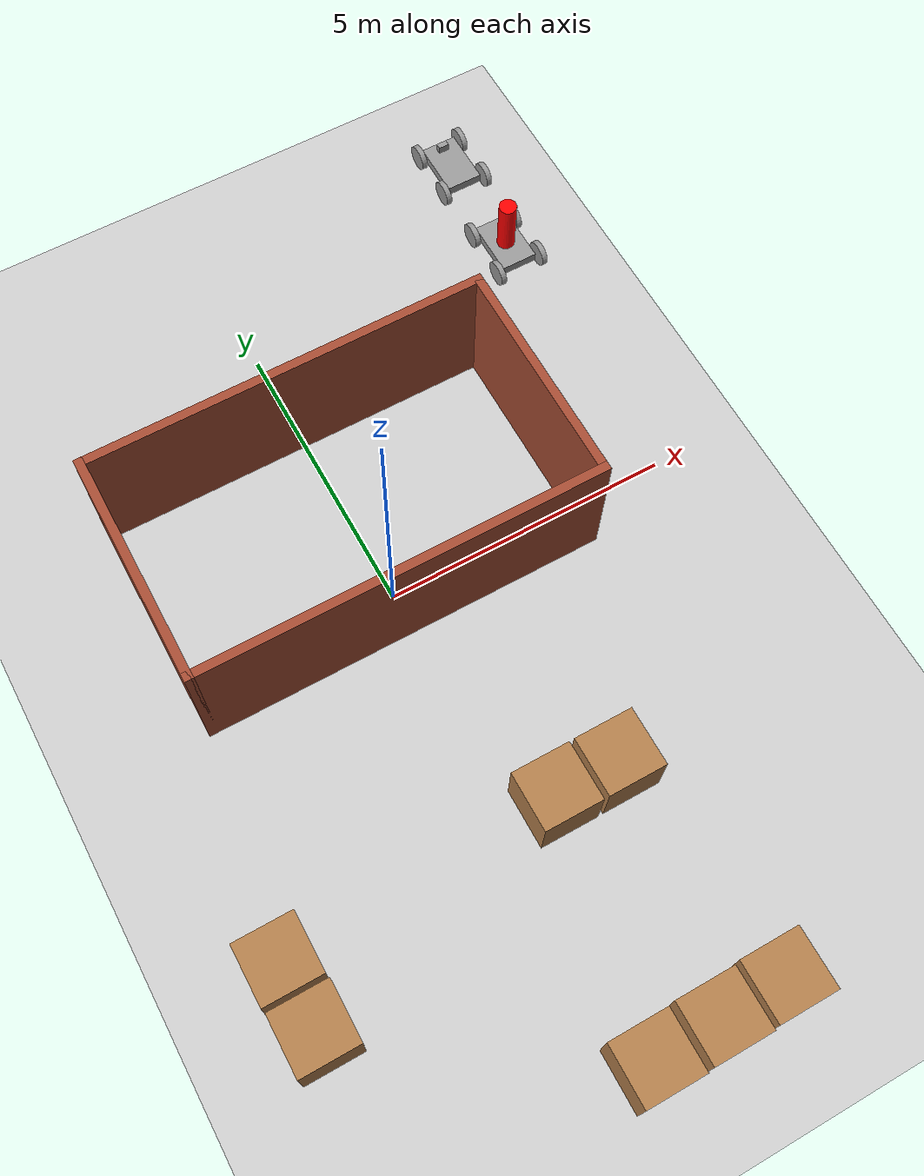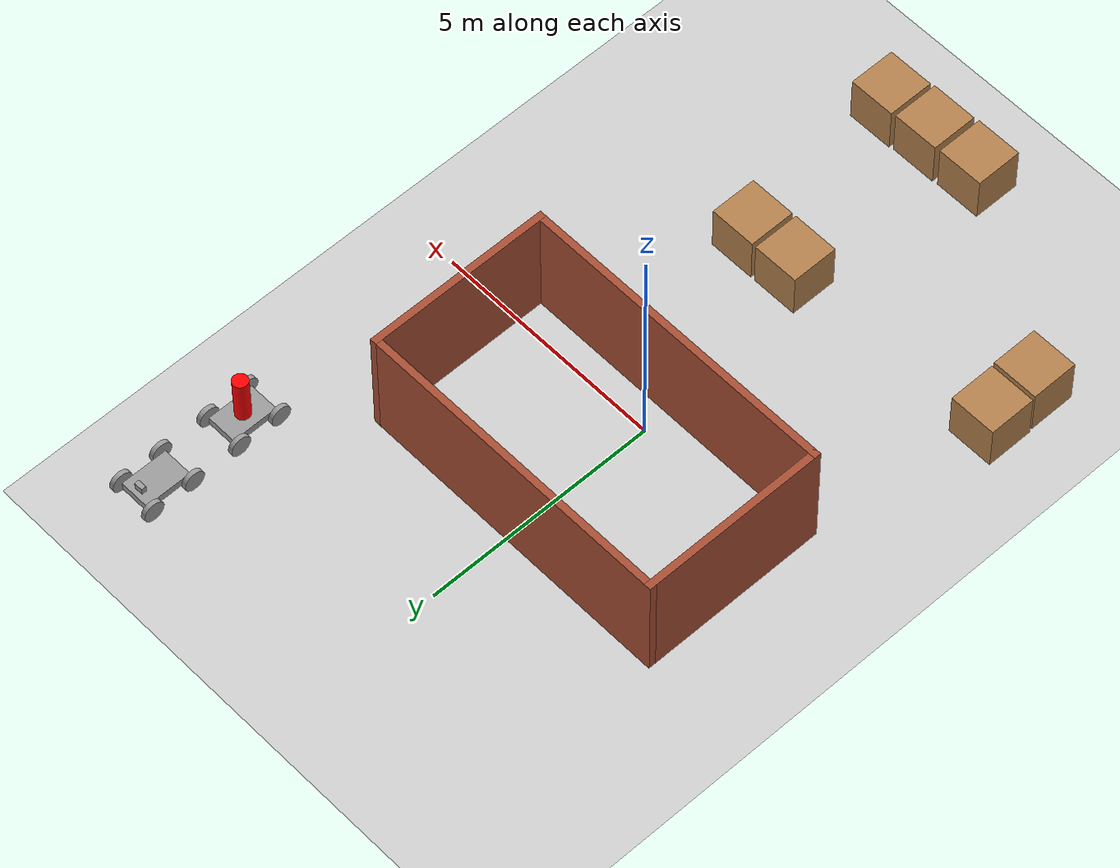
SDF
<sdf version="1.6">
 <world name="default">
  <light name="sun" type="directional">
   <pose>0 0 10 0 -0 0</pose>
   <diffuse>0.8 0.8 0.8 1</diffuse>
   <specular>0.2 0.2 0.2 1</specular>
   <attenuation>
    <range>1000</range>
    <constant>0.9</constant>
    <linear>0.01</linear>
    <quadratic>0.001</quadratic>
   </attenuation>
   <direction>-0.5 0.1 -0.9</direction>
  </light>
  <model name="ground_plane">
   <static>1</static>
   <link name="link">
    <collision name="collision">
     <geometry><plane><normal>0 0 1</normal><size>100 100</size></plane></geometry>
     <surface>
      <contact><collide_bitmask>65535</collide_bitmask></contact>
      <friction><ode><mu>100</mu><mu2>50</mu2></ode></friction>
     </surface>
    </collision>
    <visual name="visual">
     <cast_shadows>0</cast_shadows>
     <geometry><plane><normal>0 0 1</normal><size>100 100</size></plane></geometry>
     <material>
      <script><uri>file://media/materials/scripts/gazebo.material</uri><name>Gazebo/Grey</name></script>
     </material>
    </visual>
   </link>
  </model>
  <gravity>0 0 -9.8</gravity>
  <magnetic_field>6e-06 2.3e-05 -4.2e-05</magnetic_field>
  <atmosphere type="adiabatic"/>
  <physics name="default_physics" default="0" type="ode">
   <max_step_size>0.001</max_step_size>
   <real_time_factor>1</real_time_factor>
   <real_time_update_rate>1000</real_time_update_rate>
  </physics>
  <scene><ambient>0.4 0.4 0.4 1</ambient><background>0.7 0.7 0.7 1</background><shadows>1</shadows></scene>
  <audio><device>default</device></audio>
  <spherical_coordinates>
   <surface_model>EARTH_WGS84</surface_model>
   <latitude_deg>0</latitude_deg>
   <longitude_deg>0</longitude_deg>
   <elevation>0</elevation>
   <heading_deg>0</heading_deg>
  </spherical_coordinates>
  <model name="nemo">
   <link name="link_1">
    <inertial>
     <mass>5</mass>
     <inertia>
      <ixx>0.428684</ixx>
      <ixy>0</ixy>
      <ixz>0</ixz>
      <iyy>0.190336</iyy>
      <iyz>0</iyz>
      <izz>0.594986</izz>
     </inertia>
    </inertial>
    <pose>-0 0.00914 -0.007545 0 -0 0</pose>
    <visual name="visual">
     <geometry><box><size>0.654191 1 0.169826</size></box></geometry>
     <material>
      <lighting>1</lighting>
      <script><uri>file://media/materials/scripts/gazebo.material</uri><name>Gazebo/Grey</name></script>
      <shader type="vertex"><normal_map>__default__</normal_map></shader>
      <ambient>0.3 0.3 0.3 1</ambient>
      <diffuse>0.7 0.7 0.7 1</diffuse>
      <specular>0.01 0.01 0.01 1</specular>
      <emissive>0 0 0 1</emissive>
     </material>
    </visual>
    <collision name="collision">
     <geometry><box><size>0.654191 1 0.169826</size></box></geometry>
     <surface>
      <friction>
       <ode><mu>1</mu><mu2>1</mu2><fdir1>0 0 0</fdir1><slip1>0</slip1><slip2>0</slip2></ode>
       <torsional>
        <coefficient>1</coefficient>
        <patch_radius>0</patch_radius>
        <surface_radius>0</surface_radius>
        <use_patch_radius>1</use_patch_radius>
        <ode><slip>0</slip></ode>
       </torsional>
      </friction>
      <bounce><restitution_coefficient>0</restitution_coefficient><threshold>1e+06</threshold></bounce>
      <contact>
       <collide_without_contact>0</collide_without_contact>
       <collide_without_contact_bitmask>1</collide_without_contact_bitmask>
       <collide_bitmask>1</collide_bitmask>
       <ode>
        <soft_cfm>0</soft_cfm>
        <soft_erp>0.2</soft_erp>
        <kp>1e+13</kp>
        <kd>1</kd>
        <max_vel>0.01</max_vel>
        <min_depth>0</min_depth>
       </ode>
       <bullet>
        <split_impulse>1</split_impulse>
        <split_impulse_penetration_threshold>-0.01</split_impulse_penetration_threshold>
        <soft_cfm>0</soft_cfm>
        <soft_erp>0.2</soft_erp>
        <kp>1e+13</kp>
        <kd>1</kd>
       </bullet>
      </contact>
     </surface>
    </collision>
   </link>
   <link name="link_0">
    <inertial>
     <mass>0.0998699</mass>
     <inertia>
      <ixx>0.00894577</ixx>
      <ixy>0</ixy>
      <ixz>0</ixz>
      <iyy>0.00894577</iyy>
      <iyz>0</iyz>
      <izz>0.00124656</izz>
     </inertia>
    </inertial>
    <pose>-0 -0 0.577368 0 1e-06 -1e-05</pose>
    <visual name="visual">
     <geometry><cylinder><radius>0.157999</radius><length>1</length></cylinder></geometry>
     <material>
      <lighting>1</lighting>
      <script><uri>file://media/materials/scripts/gazebo.material</uri><name>Gazebo/Grey</name></script>
      <shader type="vertex"><normal_map>__default__</normal_map></shader>
      <ambient>1 0 0 1</ambient>
      <diffuse>0.7 0.7 0.7 1</diffuse>
      <specular>0.01 0.01 0.01 1</specular>
      <emissive>0 0 0 1</emissive>
     </material>
    </visual>
    <collision name="collision">
     <geometry><cylinder><radius>0.157999</radius><length>1</length></cylinder></geometry>
     <surface>
      <friction>
       <ode><mu>1</mu><mu2>1</mu2><fdir1>0 0 0</fdir1><slip1>0</slip1><slip2>0</slip2></ode>
       <torsional>
        <coefficient>1</coefficient>
        <patch_radius>0</patch_radius>
        <surface_radius>0</surface_radius>
        <use_patch_radius>1</use_patch_radius>
        <ode><slip>0</slip></ode>
       </torsional>
      </friction>
      <bounce><restitution_coefficient>0</restitution_coefficient><threshold>1e+06</threshold></bounce>
      <contact>
       <collide_without_contact>0</collide_without_contact>
       <collide_without_contact_bitmask>1</collide_without_contact_bitmask>
       <collide_bitmask>1</collide_bitmask>
       <ode>
        <soft_cfm>0</soft_cfm>
        <soft_erp>0.2</soft_erp>
        <kp>1e+13</kp>
        <kd>1</kd>
        <max_vel>0.01</max_vel>
        <min_depth>0</min_depth>
       </ode>
       <bullet>
        <split_impulse>1</split_impulse>
        <split_impulse_penetration_threshold>-0.01</split_impulse_penetration_threshold>
        <soft_cfm>0</soft_cfm>
        <soft_erp>0.2</soft_erp>
        <kp>1e+13</kp>
        <kd>1</kd>
       </bullet>
      </contact>
     </surface>
    </collision>
   </link>
   <link name="link_2">
    <inertial>
     <mass>1</mass>
     <inertia>
      <ixx>0.0131563</ixx>
      <ixy>0</ixy>
      <ixz>0</ixz>
      <iyy>0.0131563</iyy>
      <iyz>0</iyz>
      <izz>0.0247202</izz>
     </inertia>
    </inertial>
    <pose>0.422661 -0.451098 0.001886 -3.14159 -1.57079 -3e-06</pose>
    <visual name="visual">
     <geometry><cylinder><radius>0.222352</radius><length>0.0977479</length></cylinder></geometry>
     <material>
      <lighting>1</lighting>
      <script><uri>file://media/materials/scripts/gazebo.material</uri><name>Gazebo/Grey</name></script>
      <shader type="vertex"><normal_map>__default__</normal_map></shader>
      <ambient>0.3 0.3 0.3 1</ambient>
      <diffuse>0.7 0.7 0.7 1</diffuse>
      <specular>0.01 0.01 0.01 1</specular>
      <emissive>0 0 0 1</emissive>
     </material>
    </visual>
    <collision name="collision">
     <geometry><cylinder><radius>0.222352</radius><length>0.097748</length></cylinder></geometry>
     <surface>
      <friction>
       <ode><mu>1</mu><mu2>1</mu2><fdir1>0 0 0</fdir1><slip1>0</slip1><slip2>0</slip2></ode>
       <torsional>
        <coefficient>1</coefficient>
        <patch_radius>0</patch_radius>
        <surface_radius>0</surface_radius>
        <use_patch_radius>1</use_patch_radius>
        <ode><slip>0</slip></ode>
       </torsional>
      </friction>
      <bounce><restitution_coefficient>0</restitution_coefficient><threshold>1e+06</threshold></bounce>
      <contact>
       <collide_without_contact>0</collide_without_contact>
       <collide_without_contact_bitmask>1</collide_without_contact_bitmask>
       <collide_bitmask>1</collide_bitmask>
       <ode>
        <soft_cfm>0</soft_cfm>
        <soft_erp>0.2</soft_erp>
        <kp>1e+13</kp>
        <kd>1</kd>
        <max_vel>0.01</max_vel>
        <min_depth>0</min_depth>
       </ode>
       <bullet>
        <split_impulse>1</split_impulse>
        <split_impulse_penetration_threshold>-0.01</split_impulse_penetration_threshold>
        <soft_cfm>0</soft_cfm>
        <soft_erp>0.2</soft_erp>
        <kp>1e+13</kp>
        <kd>1</kd>
       </bullet>
      </contact>
     </surface>
    </collision>
   </link>
   <link name="link_2_clone">
    <inertial>
     <mass>1</mass>
     <inertia>
      <ixx>0.0131563</ixx>
      <ixy>0</ixy>
      <ixz>0</ixz>
      <iyy>0.0131563</iyy>
      <iyz>0</iyz>
      <izz>0.0247202</izz>
     </inertia>
    </inertial>
    <pose>-0.422661 0.457533 0.001886 -3.14159 -1.57079 -3e-06</pose>
    <visual name="visual">
     <geometry><cylinder><radius>0.222352</radius><length>0.0977479</length></cylinder></geometry>
     <material>
      <lighting>1</lighting>
      <script><uri>file://media/materials/scripts/gazebo.material</uri><name>Gazebo/Grey</name></script>
      <shader type="vertex"><normal_map>__default__</normal_map></shader>
      <ambient>0.3 0.3 0.3 1</ambient>
      <diffuse>0.7 0.7 0.7 1</diffuse>
      <specular>0.01 0.01 0.01 1</specular>
      <emissive>0 0 0 1</emissive>
     </material>
    </visual>
    <collision name="collision">
     <geometry><cylinder><radius>0.222352</radius><length>0.097748</length></cylinder></geometry>
     <surface>
      <friction>
       <ode><mu>1</mu><mu2>1</mu2><fdir1>0 0 0</fdir1><slip1>0</slip1><slip2>0</slip2></ode>
       <torsional>
        <coefficient>1</coefficient>
        <patch_radius>0</patch_radius>
        <surface_radius>0</surface_radius>
        <use_patch_radius>1</use_patch_radius>
        <ode><slip>0</slip></ode>
       </torsional>
      </friction>
      <bounce><restitution_coefficient>0</restitution_coefficient><threshold>1e+06</threshold></bounce>
      <contact>
       <collide_without_contact>0</collide_without_contact>
       <collide_without_contact_bitmask>1</collide_without_contact_bitmask>
       <collide_bitmask>1</collide_bitmask>
       <ode>
        <soft_cfm>0</soft_cfm>
        <soft_erp>0.2</soft_erp>
        <kp>1e+13</kp>
        <kd>1</kd>
        <max_vel>0.01</max_vel>
        <min_depth>0</min_depth>
       </ode>
       <bullet>
        <split_impulse>1</split_impulse>
        <split_impulse_penetration_threshold>-0.01</split_impulse_penetration_threshold>
        <soft_cfm>0</soft_cfm>
        <soft_erp>0.2</soft_erp>
        <kp>1e+13</kp>
        <kd>1</kd>
       </bullet>
      </contact>
     </surface>
    </collision>
   </link>
   <link name="link_2_clone_0">
    <inertial>
     <mass>1</mass>
     <inertia>
      <ixx>0.0131563</ixx>
      <ixy>0</ixy>
      <ixz>0</ixz>
      <iyy>0.0131563</iyy>
      <iyz>0</iyz>
      <izz>0.0247202</izz>
     </inertia>
    </inertial>
    <pose>-0.422661 -0.473107 0.001886 -3.14159 -1.57079 -3e-06</pose>
    <visual name="visual">
     <geometry><cylinder><radius>0.222352</radius><length>0.0977479</length></cylinder></geometry>
     <material>
      <lighting>1</lighting>
      <script><uri>file://media/materials/scripts/gazebo.material</uri><name>Gazebo/Grey</name></script>
      <shader type="vertex"><normal_map>__default__</normal_map></shader>
      <ambient>0.3 0.3 0.3 1</ambient>
      <diffuse>0.7 0.7 0.7 1</diffuse>
      <specular>0.01 0.01 0.01 1</specular>
      <emissive>0 0 0 1</emissive>
     </material>
    </visual>
    <collision name="collision">
     <geometry><cylinder><radius>0.222352</radius><length>0.097748</length></cylinder></geometry>
     <surface>
      <friction>
       <ode><mu>1</mu><mu2>1</mu2><fdir1>0 0 0</fdir1><slip1>0</slip1><slip2>0</slip2></ode>
       <torsional>
        <coefficient>1</coefficient>
        <patch_radius>0</patch_radius>
        <surface_radius>0</surface_radius>
        <use_patch_radius>1</use_patch_radius>
        <ode><slip>0</slip></ode>
       </torsional>
      </friction>
      <bounce><restitution_coefficient>0</restitution_coefficient><threshold>1e+06</threshold></bounce>
      <contact>
       <collide_without_contact>0</collide_without_contact>
       <collide_without_contact_bitmask>1</collide_without_contact_bitmask>
       <collide_bitmask>1</collide_bitmask>
       <ode>
        <soft_cfm>0</soft_cfm>
        <soft_erp>0.2</soft_erp>
        <kp>1e+13</kp>
        <kd>1</kd>
        <max_vel>0.01</max_vel>
        <min_depth>0</min_depth>
       </ode>
       <bullet>
        <split_impulse>1</split_impulse>
        <split_impulse_penetration_threshold>-0.01</split_impulse_penetration_threshold>
        <soft_cfm>0</soft_cfm>
        <soft_erp>0.2</soft_erp>
        <kp>1e+13</kp>
        <kd>1</kd>
       </bullet>
      </contact>
     </surface>
    </collision>
   </link>
   <link name="link_2_clone_clone">
    <inertial>
     <mass>1</mass>
     <inertia>
      <ixx>0.0131563</ixx>
      <ixy>0</ixy>
      <ixz>0</ixz>
      <iyy>0.0131563</iyy>
      <iyz>0</iyz>
      <izz>0.0247202</izz>
     </inertia>
    </inertial>
    <pose>0.422661 0.457533 0.001886 -3.14159 -1.57079 -3e-06</pose>
    <visual name="visual">
     <geometry><cylinder><radius>0.222352</radius><length>0.0977479</length></cylinder></geometry>
     <material>
      <lighting>1</lighting>
      <script><uri>file://media/materials/scripts/gazebo.material</uri><name>Gazebo/Grey</name></script>
      <shader type="vertex"><normal_map>__default__</normal_map></shader>
      <ambient>0.3 0.3 0.3 1</ambient>
      <diffuse>0.7 0.7 0.7 1</diffuse>
      <specular>0.01 0.01 0.01 1</specular>
      <emissive>0 0 0 1</emissive>
     </material>
    </visual>
    <collision name="collision">
     <geometry><cylinder><radius>0.222352</radius><length>0.097748</length></cylinder></geometry>
     <surface>
      <friction>
       <ode><mu>1</mu><mu2>1</mu2><fdir1>0 0 0</fdir1><slip1>0</slip1><slip2>0</slip2></ode>
       <torsional>
        <coefficient>1</coefficient>
        <patch_radius>0</patch_radius>
        <surface_radius>0</surface_radius>
        <use_patch_radius>1</use_patch_radius>
        <ode><slip>0</slip></ode>
       </torsional>
      </friction>
      <bounce><restitution_coefficient>0</restitution_coefficient><threshold>1e+06</threshold></bounce>
      <contact>
       <collide_without_contact>0</collide_without_contact>
       <collide_without_contact_bitmask>1</collide_without_contact_bitmask>
       <collide_bitmask>1</collide_bitmask>
       <ode>
        <soft_cfm>0</soft_cfm>
        <soft_erp>0.2</soft_erp>
        <kp>1e+13</kp>
        <kd>1</kd>
        <max_vel>0.01</max_vel>
        <min_depth>0</min_depth>
       </ode>
       <bullet>
        <split_impulse>1</split_impulse>
        <split_impulse_penetration_threshold>-0.01</split_impulse_penetration_threshold>
        <soft_cfm>0</soft_cfm>
        <soft_erp>0.2</soft_erp>
        <kp>1e+13</kp>
        <kd>1</kd>
       </bullet>
      </contact>
     </surface>
    </collision>
   </link>
   <joint name="link_0_JOINT_0" type="fixed">
    <parent>link_0</parent>
    <child>link_1</child>
    <physics>
     <ode><limit><cfm>0</cfm><erp>0.2</erp></limit><suspension><cfm>0</cfm><erp>0.2</erp></suspension></ode>
    </physics>
   </joint>
   <joint name="link_1_JOINT_0" type="revolute">
    <parent>link_1</parent>
    <child>link_2_clone_clone</child>
    <axis>
     <xyz>0 0 1</xyz>
     <use_parent_model_frame>0</use_parent_model_frame>
     <limit>
      <lower>-1.79769e+308</lower>
      <upper>1.79769e+308</upper>
      <effort>-1</effort>
      <velocity>-1</velocity>
     </limit>
     <dynamics>
      <spring_reference>0</spring_reference>
      <spring_stiffness>0</spring_stiffness>
      <damping>0</damping>
      <friction>0</friction>
     </dynamics>
    </axis>
    <physics>
     <ode><limit><cfm>0</cfm><erp>0.2</erp></limit><suspension><cfm>0</cfm><erp>0.2</erp></suspension></ode>
    </physics>
   </joint>
   <joint name="link_1_JOINT_1" type="revolute">
    <parent>link_1</parent>
    <child>link_2</child>
    <axis>
     <xyz>0 0 1</xyz>
     <use_parent_model_frame>0</use_parent_model_frame>
     <limit>
      <lower>-1.79769e+308</lower>
      <upper>1.79769e+308</upper>
      <effort>-1</effort>
      <velocity>-1</velocity>
     </limit>
     <dynamics>
      <spring_reference>0</spring_reference>
      <spring_stiffness>0</spring_stiffness>
      <damping>0</damping>
      <friction>0</friction>
     </dynamics>
    </axis>
    <physics>
     <ode><limit><cfm>0</cfm><erp>0.2</erp></limit><suspension><cfm>0</cfm><erp>0.2</erp></suspension></ode>
    </physics>
   </joint>
   <joint name="link_1_JOINT_2" type="revolute">
    <parent>link_1</parent>
    <child>link_2_clone</child>
    <axis>
     <xyz>0 0 1</xyz>
     <use_parent_model_frame>0</use_parent_model_frame>
     <limit>
      <lower>-1.79769e+308</lower>
      <upper>1.79769e+308</upper>
      <effort>-1</effort>
      <velocity>-1</velocity>
     </limit>
     <dynamics>
      <spring_reference>0</spring_reference>
      <spring_stiffness>0</spring_stiffness>
      <damping>0</damping>
      <friction>0</friction>
     </dynamics>
    </axis>
    <physics>
     <ode><limit><cfm>0</cfm><erp>0.2</erp></limit><suspension><cfm>0</cfm><erp>0.2</erp></suspension></ode>
    </physics>
   </joint>
   <joint name="link_1_JOINT_3" type="revolute">
    <parent>link_1</parent>
    <child>link_2_clone_0</child>
    <axis>
     <xyz>0 0 1</xyz>
     <use_parent_model_frame>0</use_parent_model_frame>
     <limit>
      <lower>-1.79769e+308</lower>
      <upper>1.79769e+308</upper>
      <effort>-1</effort>
      <velocity>-1</velocity>
     </limit>
     <dynamics>
      <spring_reference>0</spring_reference>
      <spring_stiffness>0</spring_stiffness>
      <damping>0</damping>
      <friction>0</friction>
     </dynamics>
    </axis>
    <physics>
     <ode><limit><cfm>0</cfm><erp>0.2</erp></limit><suspension><cfm>0</cfm><erp>0.2</erp></suspension></ode>
    </physics>
   </joint>
   <static>0</static>
   <plugin name="object_controller" filename="libgazebo_ros_planar_move.so">
    <commandTopic>vel_nemo</commandTopic>
    <odometryTopic>odom_nemo</odometryTopic>
    <odometryFrame>odom_nemo</odometryFrame>
    <odometryRate>20.0</odometryRate>
   </plugin>
   <pose>4.95315 4.99995 0.220466 0 -1e-06 0.001932</pose>
  </model>
  <model name="marlin">
   <link name="link_1">
    <inertial>
     <mass>5</mass>
     <inertia>
      <ixx>0.428684</ixx>
      <ixy>0</ixy>
      <ixz>0</ixz>
      <iyy>0.190336</iyy>
      <iyz>0</iyz>
      <izz>0.594986</izz>
     </inertia>
    </inertial>
    <pose>-0 0.00914 -0.007545 0 -0 0</pose>
    <visual name="visual">
     <geometry><box><size>0.654191 1 0.169826</size></box></geometry>
     <material>
      <lighting>1</lighting>
      <script><uri>file://media/materials/scripts/gazebo.material</uri><name>Gazebo/Grey</name></script>
      <shader type="vertex"><normal_map>__default__</normal_map></shader>
      <ambient>0.3 0.3 0.3 1</ambient>
      <diffuse>0.7 0.7 0.7 1</diffuse>
      <specular>0.01 0.01 0.01 1</specular>
      <emissive>0 0 0 1</emissive>
     </material>
    </visual>
    <collision name="collision">
     <geometry><box><size>0.654191 1 0.169826</size></box></geometry>
     <surface>
      <friction>
       <ode><mu>1</mu><mu2>1</mu2><fdir1>0 0 0</fdir1><slip1>0</slip1><slip2>0</slip2></ode>
       <torsional>
        <coefficient>1</coefficient>
        <patch_radius>0</patch_radius>
        <surface_radius>0</surface_radius>
        <use_patch_radius>1</use_patch_radius>
        <ode><slip>0</slip></ode>
       </torsional>
      </friction>
      <bounce><restitution_coefficient>0</restitution_coefficient><threshold>1e+06</threshold></bounce>
      <contact>
       <collide_without_contact>0</collide_without_contact>
       <collide_without_contact_bitmask>1</collide_without_contact_bitmask>
       <collide_bitmask>1</collide_bitmask>
       <ode>
        <soft_cfm>0</soft_cfm>
        <soft_erp>0.2</soft_erp>
        <kp>1e+13</kp>
        <kd>1</kd>
        <max_vel>0.01</max_vel>
        <min_depth>0</min_depth>
       </ode>
       <bullet>
        <split_impulse>1</split_impulse>
        <split_impulse_penetration_threshold>-0.01</split_impulse_penetration_threshold>
        <soft_cfm>0</soft_cfm>
        <soft_erp>0.2</soft_erp>
        <kp>1e+13</kp>
        <kd>1</kd>
       </bullet>
      </contact>
     </surface>
    </collision>
   </link>
   <link name="link_1_0">
    <inertial>
     <mass>0.00311427</mass>
     <inertia>
      <ixx>9.31086e-06</ixx>
      <ixy>0</ixy>
      <ixz>0</ixz>
      <iyy>1.57288e-05</iyy>
      <iyz>0</iyz>
      <izz>1.20857e-05</izz>
     </inertia>
    </inertial>
    <pose>0.007573 0.353081 0.141239 0 1e-06 -1e-05</pose>
    <visual name="visual">
     <geometry><box><size>0.188811 0.104497 0.157979</size></box></geometry>
     <material>
      <lighting>1</lighting>
      <script><uri>file://media/materials/scripts/gazebo.material</uri><name>Gazebo/Grey</name></script>
      <emissive>0 0 0 1</emissive>
     </material>
    </visual>
    <collision name="collision">
     <geometry><box><size>0.188811 0.104497 0.157979</size></box></geometry>
     <surface>
      <friction>
       <ode><mu>1</mu><mu2>1</mu2><fdir1>0 0 0</fdir1><slip1>0</slip1><slip2>0</slip2></ode>
       <torsional>
        <coefficient>1</coefficient>
        <patch_radius>0</patch_radius>
        <surface_radius>0</surface_radius>
        <use_patch_radius>1</use_patch_radius>
        <ode><slip>0</slip></ode>
       </torsional>
      </friction>
      <bounce><restitution_coefficient>0</restitution_coefficient><threshold>1e+06</threshold></bounce>
      <contact>
       <collide_without_contact>0</collide_without_contact>
       <collide_without_contact_bitmask>1</collide_without_contact_bitmask>
       <collide_bitmask>1</collide_bitmask>
       <ode>
        <soft_cfm>0</soft_cfm>
        <soft_erp>0.2</soft_erp>
        <kp>1e+13</kp>
        <kd>1</kd>
        <max_vel>0.01</max_vel>
        <min_depth>0</min_depth>
       </ode>
       <bullet>
        <split_impulse>1</split_impulse>
        <split_impulse_penetration_threshold>-0.01</split_impulse_penetration_threshold>
        <soft_cfm>0</soft_cfm>
        <soft_erp>0.2</soft_erp>
        <kp>1e+13</kp>
        <kd>1</kd>
       </bullet>
      </contact>
     </surface>
    </collision>
   </link>
   <link name="link_2">
    <inertial>
     <mass>1</mass>
     <inertia>
      <ixx>0.0131563</ixx>
      <ixy>0</ixy>
      <ixz>0</ixz>
      <iyy>0.0131563</iyy>
      <iyz>0</iyz>
      <izz>0.0247202</izz>
     </inertia>
    </inertial>
    <pose>0.422661 -0.451098 0.001886 -3.14159 -1.57079 -3e-06</pose>
    <visual name="visual">
     <geometry><cylinder><radius>0.222352</radius><length>0.0977479</length></cylinder></geometry>
     <material>
      <lighting>1</lighting>
      <script><uri>file://media/materials/scripts/gazebo.material</uri><name>Gazebo/Grey</name></script>
      <shader type="vertex"><normal_map>__default__</normal_map></shader>
      <ambient>0.3 0.3 0.3 1</ambient>
      <diffuse>0.7 0.7 0.7 1</diffuse>
      <specular>0.01 0.01 0.01 1</specular>
      <emissive>0 0 0 1</emissive>
     </material>
    </visual>
    <collision name="collision">
     <geometry><cylinder><radius>0.222352</radius><length>0.097748</length></cylinder></geometry>
     <surface>
      <friction>
       <ode><mu>1</mu><mu2>1</mu2><fdir1>0 0 0</fdir1><slip1>0</slip1><slip2>0</slip2></ode>
       <torsional>
        <coefficient>1</coefficient>
        <patch_radius>0</patch_radius>
        <surface_radius>0</surface_radius>
        <use_patch_radius>1</use_patch_radius>
        <ode><slip>0</slip></ode>
       </torsional>
      </friction>
      <bounce><restitution_coefficient>0</restitution_coefficient><threshold>1e+06</threshold></bounce>
      <contact>
       <collide_without_contact>0</collide_without_contact>
       <collide_without_contact_bitmask>1</collide_without_contact_bitmask>
       <collide_bitmask>1</collide_bitmask>
       <ode>
        <soft_cfm>0</soft_cfm>
        <soft_erp>0.2</soft_erp>
        <kp>1e+13</kp>
        <kd>1</kd>
        <max_vel>0.01</max_vel>
        <min_depth>0</min_depth>
       </ode>
       <bullet>
        <split_impulse>1</split_impulse>
        <split_impulse_penetration_threshold>-0.01</split_impulse_penetration_threshold>
        <soft_cfm>0</soft_cfm>
        <soft_erp>0.2</soft_erp>
        <kp>1e+13</kp>
        <kd>1</kd>
       </bullet>
      </contact>
     </surface>
    </collision>
   </link>
   <link name="link_2_clone">
    <inertial>
     <mass>1</mass>
     <inertia>
      <ixx>0.0131563</ixx>
      <ixy>0</ixy>
      <ixz>0</ixz>
      <iyy>0.0131563</iyy>
      <iyz>0</iyz>
      <izz>0.0247202</izz>
     </inertia>
    </inertial>
    <pose>-0.422661 0.457533 0.001886 -3.14159 -1.57079 -3e-06</pose>
    <visual name="visual">
     <geometry><cylinder><radius>0.222352</radius><length>0.0977479</length></cylinder></geometry>
     <material>
      <lighting>1</lighting>
      <script><uri>file://media/materials/scripts/gazebo.material</uri><name>Gazebo/Grey</name></script>
      <shader type="vertex"><normal_map>__default__</normal_map></shader>
      <ambient>0.3 0.3 0.3 1</ambient>
      <diffuse>0.7 0.7 0.7 1</diffuse>
      <specular>0.01 0.01 0.01 1</specular>
      <emissive>0 0 0 1</emissive>
     </material>
    </visual>
    <collision name="collision">
     <geometry><cylinder><radius>0.222352</radius><length>0.097748</length></cylinder></geometry>
     <surface>
      <friction>
       <ode><mu>1</mu><mu2>1</mu2><fdir1>0 0 0</fdir1><slip1>0</slip1><slip2>0</slip2></ode>
       <torsional>
        <coefficient>1</coefficient>
        <patch_radius>0</patch_radius>
        <surface_radius>0</surface_radius>
        <use_patch_radius>1</use_patch_radius>
        <ode><slip>0</slip></ode>
       </torsional>
      </friction>
      <bounce><restitution_coefficient>0</restitution_coefficient><threshold>1e+06</threshold></bounce>
      <contact>
       <collide_without_contact>0</collide_without_contact>
       <collide_without_contact_bitmask>1</collide_without_contact_bitmask>
       <collide_bitmask>1</collide_bitmask>
       <ode>
        <soft_cfm>0</soft_cfm>
        <soft_erp>0.2</soft_erp>
        <kp>1e+13</kp>
        <kd>1</kd>
        <max_vel>0.01</max_vel>
        <min_depth>0</min_depth>
       </ode>
       <bullet>
        <split_impulse>1</split_impulse>
        <split_impulse_penetration_threshold>-0.01</split_impulse_penetration_threshold>
        <soft_cfm>0</soft_cfm>
        <soft_erp>0.2</soft_erp>
        <kp>1e+13</kp>
        <kd>1</kd>
       </bullet>
      </contact>
     </surface>
    </collision>
   </link>
   <link name="link_2_clone_0">
    <inertial>
     <mass>1</mass>
     <inertia>
      <ixx>0.0131563</ixx>
      <ixy>0</ixy>
      <ixz>0</ixz>
      <iyy>0.0131563</iyy>
      <iyz>0</iyz>
      <izz>0.0247202</izz>
     </inertia>
    </inertial>
    <pose>-0.422661 -0.473107 0.001886 -3.14159 -1.57079 -3e-06</pose>
    <visual name="visual">
     <geometry><cylinder><radius>0.222352</radius><length>0.0977479</length></cylinder></geometry>
     <material>
      <lighting>1</lighting>
      <script><uri>file://media/materials/scripts/gazebo.material</uri><name>Gazebo/Grey</name></script>
      <shader type="vertex"><normal_map>__default__</normal_map></shader>
      <ambient>0.3 0.3 0.3 1</ambient>
      <diffuse>0.7 0.7 0.7 1</diffuse>
      <specular>0.01 0.01 0.01 1</specular>
      <emissive>0 0 0 1</emissive>
     </material>
    </visual>
    <collision name="collision">
     <geometry><cylinder><radius>0.222352</radius><length>0.097748</length></cylinder></geometry>
     <surface>
      <friction>
       <ode><mu>1</mu><mu2>1</mu2><fdir1>0 0 0</fdir1><slip1>0</slip1><slip2>0</slip2></ode>
       <torsional>
        <coefficient>1</coefficient>
        <patch_radius>0</patch_radius>
        <surface_radius>0</surface_radius>
        <use_patch_radius>1</use_patch_radius>
        <ode><slip>0</slip></ode>
       </torsional>
      </friction>
      <bounce><restitution_coefficient>0</restitution_coefficient><threshold>1e+06</threshold></bounce>
      <contact>
       <collide_without_contact>0</collide_without_contact>
       <collide_without_contact_bitmask>1</collide_without_contact_bitmask>
       <collide_bitmask>1</collide_bitmask>
       <ode>
        <soft_cfm>0</soft_cfm>
        <soft_erp>0.2</soft_erp>
        <kp>1e+13</kp>
        <kd>1</kd>
        <max_vel>0.01</max_vel>
        <min_depth>0</min_depth>
       </ode>
       <bullet>
        <split_impulse>1</split_impulse>
        <split_impulse_penetration_threshold>-0.01</split_impulse_penetration_threshold>
        <soft_cfm>0</soft_cfm>
        <soft_erp>0.2</soft_erp>
        <kp>1e+13</kp>
        <kd>1</kd>
       </bullet>
      </contact>
     </surface>
    </collision>
   </link>
   <link name="link_2_clone_clone">
    <inertial>
     <mass>1</mass>
     <inertia>
      <ixx>0.0131563</ixx>
      <ixy>0</ixy>
      <ixz>0</ixz>
      <iyy>0.0131563</iyy>
      <iyz>0</iyz>
      <izz>0.0247202</izz>
     </inertia>
    </inertial>
    <pose>0.422661 0.457533 0.001886 -3.14159 -1.57079 -3e-06</pose>
    <visual name="visual">
     <geometry><cylinder><radius>0.222352</radius><length>0.0977479</length></cylinder></geometry>
     <material>
      <lighting>1</lighting>
      <script><uri>file://media/materials/scripts/gazebo.material</uri><name>Gazebo/Grey</name></script>
      <shader type="vertex"><normal_map>__default__</normal_map></shader>
      <ambient>0.3 0.3 0.3 1</ambient>
      <diffuse>0.7 0.7 0.7 1</diffuse>
      <specular>0.01 0.01 0.01 1</specular>
      <emissive>0 0 0 1</emissive>
     </material>
    </visual>
    <collision name="collision">
     <geometry><cylinder><radius>0.222352</radius><length>0.097748</length></cylinder></geometry>
     <surface>
      <friction>
       <ode><mu>1</mu><mu2>1</mu2><fdir1>0 0 0</fdir1><slip1>0</slip1><slip2>0</slip2></ode>
       <torsional>
        <coefficient>1</coefficient>
        <patch_radius>0</patch_radius>
        <surface_radius>0</surface_radius>
        <use_patch_radius>1</use_patch_radius>
        <ode><slip>0</slip></ode>
       </torsional>
      </friction>
      <bounce><restitution_coefficient>0</restitution_coefficient><threshold>1e+06</threshold></bounce>
      <contact>
       <collide_without_contact>0</collide_without_contact>
       <collide_without_contact_bitmask>1</collide_without_contact_bitmask>
       <collide_bitmask>1</collide_bitmask>
       <ode>
        <soft_cfm>0</soft_cfm>
        <soft_erp>0.2</soft_erp>
        <kp>1e+13</kp>
        <kd>1</kd>
        <max_vel>0.01</max_vel>
        <min_depth>0</min_depth>
       </ode>
       <bullet>
        <split_impulse>1</split_impulse>
        <split_impulse_penetration_threshold>-0.01</split_impulse_penetration_threshold>
        <soft_cfm>0</soft_cfm>
        <soft_erp>0.2</soft_erp>
        <kp>1e+13</kp>
        <kd>1</kd>
       </bullet>
      </contact>
     </surface>
    </collision>
   </link>
   <joint name="link_1_0_JOINT_1" type="fixed">
    <parent>link_1_0</parent>
    <child>link_1</child>
    <physics>
     <ode><limit><cfm>0</cfm><erp>0.2</erp></limit><suspension><cfm>0</cfm><erp>0.2</erp></suspension></ode>
    </physics>
   </joint>
   <joint name="link_1_JOINT_0" type="revolute">
    <parent>link_1</parent>
    <child>link_2_clone_clone</child>
    <axis>
     <xyz>0 0 1</xyz>
     <use_parent_model_frame>0</use_parent_model_frame>
     <limit>
      <lower>-1.79769e+308</lower>
      <upper>1.79769e+308</upper>
      <effort>-1</effort>
      <velocity>-1</velocity>
     </limit>
     <dynamics>
      <spring_reference>0</spring_reference>
      <spring_stiffness>0</spring_stiffness>
      <damping>0</damping>
      <friction>0</friction>
     </dynamics>
    </axis>
    <physics>
     <ode><limit><cfm>0</cfm><erp>0.2</erp></limit><suspension><cfm>0</cfm><erp>0.2</erp></suspension></ode>
    </physics>
   </joint>
   <joint name="link_1_JOINT_1" type="revolute">
    <parent>link_1</parent>
    <child>link_2</child>
    <axis>
     <xyz>0 0 1</xyz>
     <use_parent_model_frame>0</use_parent_model_frame>
     <limit>
      <lower>-1.79769e+308</lower>
      <upper>1.79769e+308</upper>
      <effort>-1</effort>
      <velocity>-1</velocity>
     </limit>
     <dynamics>
      <spring_reference>0</spring_reference>
      <spring_stiffness>0</spring_stiffness>
      <damping>0</damping>
      <friction>0</friction>
     </dynamics>
    </axis>
    <physics>
     <ode><limit><cfm>0</cfm><erp>0.2</erp></limit><suspension><cfm>0</cfm><erp>0.2</erp></suspension></ode>
    </physics>
   </joint>
   <joint name="link_1_JOINT_2" type="revolute">
    <parent>link_1</parent>
    <child>link_2_clone</child>
    <axis>
     <xyz>0 0 1</xyz>
     <use_parent_model_frame>0</use_parent_model_frame>
     <limit>
      <lower>-1.79769e+308</lower>
      <upper>1.79769e+308</upper>
      <effort>-1</effort>
      <velocity>-1</velocity>
     </limit>
     <dynamics>
      <spring_reference>0</spring_reference>
      <spring_stiffness>0</spring_stiffness>
      <damping>0</damping>
      <friction>0</friction>
     </dynamics>
    </axis>
    <physics>
     <ode><limit><cfm>0</cfm><erp>0.2</erp></limit><suspension><cfm>0</cfm><erp>0.2</erp></suspension></ode>
    </physics>
   </joint>
   <joint name="link_1_JOINT_3" type="revolute">
    <parent>link_1</parent>
    <child>link_2_clone_0</child>
    <axis>
     <xyz>0 0 1</xyz>
     <use_parent_model_frame>0</use_parent_model_frame>
     <limit>
      <lower>-1.79769e+308</lower>
      <upper>1.79769e+308</upper>
      <effort>-1</effort>
      <velocity>-1</velocity>
     </limit>
     <dynamics>
      <spring_reference>0</spring_reference>
      <spring_stiffness>0</spring_stiffness>
      <damping>0</damping>
      <friction>0</friction>
     </dynamics>
    </axis>
    <physics>
     <ode><limit><cfm>0</cfm><erp>0.2</erp></limit><suspension><cfm>0</cfm><erp>0.2</erp></suspension></ode>
    </physics>
   </joint>
   <static>0</static>
   <plugin name="object_controller" filename="libgazebo_ros_planar_move.so">
    <commandTopic>cmd_vel</commandTopic>
    <odometryTopic>odom</odometryTopic>
    <odometryFrame>odom</odometryFrame>
    <odometryRate>20.0</odometryRate>
    <robotBaseFrame>base_footprint</robotBaseFrame>
   </plugin>
   <pose>4.95281 6.99996 0.220466 0 -1e-06 0.001898</pose>
  </model>
  <model name="house">
   <pose>-0.091892 1.30166 0 0 -0 0</pose>
   <link name="Wall_0">
    <collision name="Wall_0_Collision">
     <geometry><box><size>4 0.15 2.5</size></box></geometry>
     <pose>0 0 1.25 0 -0 0</pose>
    </collision>
    <visual name="Wall_0_Visual">
     <pose>0 0 1.25 0 -0 0</pose>
     <geometry><box><size>4 0.15 2.5</size></box></geometry>
     <material>
      <script><uri>file://media/materials/scripts/gazebo.material</uri><name>Gazebo/Bricks</name></script>
      <ambient>1 1 1 1</ambient>
     </material>
     <meta><layer>0</layer></meta>
    </visual>
    <pose>-3.425 0 0 0 -0 -1.5708</pose>
   </link>
   <link name="Wall_1">
    <collision name="Wall_1_Collision">
     <geometry><box><size>7 0.15 2.5</size></box></geometry>
     <pose>0 0 1.25 0 -0 0</pose>
    </collision>
    <visual name="Wall_1_Visual">
     <pose>0 0 1.25 0 -0 0</pose>
     <geometry><box><size>7 0.15 2.5</size></box></geometry>
     <material>
      <script><uri>file://media/materials/scripts/gazebo.material</uri><name>Gazebo/Bricks</name></script>
      <ambient>1 1 1 1</ambient>
     </material>
     <meta><layer>0</layer></meta>
    </visual>
    <pose>0 -1.925 0 0 -0 0</pose>
   </link>
   <link name="Wall_2">
    <collision name="Wall_2_Collision">
     <geometry><box><size>4 0.15 2.5</size></box></geometry>
     <pose>0 0 1.25 0 -0 0</pose>
    </collision>
    <visual name="Wall_2_Visual">
     <pose>0 0 1.25 0 -0 0</pose>
     <geometry><box><size>4 0.15 2.5</size></box></geometry>
     <material>
      <script><uri>file://media/materials/scripts/gazebo.material</uri><name>Gazebo/Bricks</name></script>
      <ambient>1 1 1 1</ambient>
     </material>
     <meta><layer>0</layer></meta>
    </visual>
    <pose>3.425 0 0 0 -0 1.5708</pose>
   </link>
   <link name="Wall_3">
    <collision name="Wall_3_Collision">
     <geometry><box><size>7 0.15 2.5</size></box></geometry>
     <pose>0 0 1.25 0 -0 0</pose>
    </collision>
    <visual name="Wall_3_Visual">
     <pose>0 0 1.25 0 -0 0</pose>
     <geometry><box><size>7 0.15 2.5</size></box></geometry>
     <material>
      <script><uri>file://media/materials/scripts/gazebo.material</uri><name>Gazebo/Bricks</name></script>
      <ambient>1 1 1 1</ambient>
     </material>
     <meta><layer>0</layer></meta>
    </visual>
    <pose>0 1.925 0 0 -0 3.14159</pose>
   </link>
   <static>1</static>
  </model>
  <model name="wood_box">
   <link name="link">
    <inertial>
     <mass>1</mass>
     <inertia>
      <ixx>0.166667</ixx>
      <ixy>0</ixy>
      <ixz>0</ixz>
      <iyy>0.166667</iyy>
      <iyz>0</iyz>
      <izz>0.166667</izz>
     </inertia>
    </inertial>
    <visual name="visual">
     <geometry><box><size>1 1 1</size></box></geometry>
     <material>
      <script><name>Gazebo/Wood</name><uri>file://media/materials/scripts/gazebo.material</uri></script>
      <shader type="vertex"><normal_map>__default__</normal_map></shader>
      <ambient>1 1 1 1</ambient>
      <diffuse>1 1 1 1</diffuse>
      <specular>0.2 0.2 0.2 1</specular>
      <emissive>0 0 0 1</emissive>
     </material>
    </visual>
    <collision name="collision">
     <geometry><box><size>1 1 1</size></box></geometry>
     <surface>
      <friction>
       <ode><mu>1</mu><mu2>1</mu2><fdir1>0 0 0</fdir1><slip1>0</slip1><slip2>0</slip2></ode>
       <torsional>
        <coefficient>1</coefficient>
        <patch_radius>0</patch_radius>
        <surface_radius>0</surface_radius>
        <use_patch_radius>1</use_patch_radius>
        <ode><slip>0</slip></ode>
       </torsional>
      </friction>
      <bounce><restitution_coefficient>0</restitution_coefficient><threshold>1e+06</threshold></bounce>
      <contact>
       <collide_without_contact>0</collide_without_contact>
       <collide_without_contact_bitmask>1</collide_without_contact_bitmask>
       <collide_bitmask>1</collide_bitmask>
       <ode>
        <soft_cfm>0</soft_cfm>
        <soft_erp>0.2</soft_erp>
        <kp>1e+13</kp>
        <kd>1</kd>
        <max_vel>0.01</max_vel>
        <min_depth>0</min_depth>
       </ode>
       <bullet>
        <split_impulse>1</split_impulse>
        <split_impulse_penetration_threshold>-0.01</split_impulse_penetration_threshold>
        <soft_cfm>0</soft_cfm>
        <soft_erp>0.2</soft_erp>
        <kp>1e+13</kp>
        <kd>1</kd>
       </bullet>
      </contact>
     </surface>
    </collision>
   </link>
   <static>0</static>
   <pose>1.97586 -8.02043 0.499995 -1e-05 -0 -0</pose>
  </model>
  <model name="wood_box_clone">
   <link name="link">
    <inertial>
     <mass>1</mass>
     <inertia>
      <ixx>0.166667</ixx>
      <ixy>0</ixy>
      <ixz>0</ixz>
      <iyy>0.166667</iyy>
      <iyz>0</iyz>
      <izz>0.166667</izz>
     </inertia>
    </inertial>
    <visual name="visual">
     <geometry><box><size>1 1 1</size></box></geometry>
     <material>
      <script><name>Gazebo/Wood</name><uri>file://media/materials/scripts/gazebo.material</uri></script>
      <shader type="vertex"><normal_map>__default__</normal_map></shader>
      <ambient>1 1 1 1</ambient>
      <diffuse>1 1 1 1</diffuse>
      <specular>0.2 0.2 0.2 1</specular>
      <emissive>0 0 0 1</emissive>
     </material>
    </visual>
    <collision name="collision">
     <geometry><box><size>1 1 1</size></box></geometry>
     <surface>
      <friction>
       <ode><mu>1</mu><mu2>1</mu2><fdir1>0 0 0</fdir1><slip1>0</slip1><slip2>0</slip2></ode>
       <torsional>
        <coefficient>1</coefficient>
        <patch_radius>0</patch_radius>
        <surface_radius>0</surface_radius>
        <use_patch_radius>1</use_patch_radius>
        <ode><slip>0</slip></ode>
       </torsional>
      </friction>
      <bounce><restitution_coefficient>0</restitution_coefficient><threshold>1e+06</threshold></bounce>
      <contact>
       <collide_without_contact>0</collide_without_contact>
       <collide_without_contact_bitmask>1</collide_without_contact_bitmask>
       <collide_bitmask>1</collide_bitmask>
       <ode>
        <soft_cfm>0</soft_cfm>
        <soft_erp>0.2</soft_erp>
        <kp>1e+13</kp>
        <kd>1</kd>
        <max_vel>0.01</max_vel>
        <min_depth>0</min_depth>
       </ode>
       <bullet>
        <split_impulse>1</split_impulse>
        <split_impulse_penetration_threshold>-0.01</split_impulse_penetration_threshold>
        <soft_cfm>0</soft_cfm>
        <soft_erp>0.2</soft_erp>
        <kp>1e+13</kp>
        <kd>1</kd>
       </bullet>
      </contact>
     </surface>
    </collision>
   </link>
   <static>0</static>
   <pose>0.893754 -8.04831 0.499995 0 -1e-05 0</pose>
  </model>
  <model name="wood_box_clone_clone">
   <link name="link">
    <inertial>
     <mass>1</mass>
     <inertia>
      <ixx>0.166667</ixx>
      <ixy>0</ixy>
      <ixz>0</ixz>
      <iyy>0.166667</iyy>
      <iyz>0</iyz>
      <izz>0.166667</izz>
     </inertia>
    </inertial>
    <visual name="visual">
     <geometry><box><size>1 1 1</size></box></geometry>
     <material>
      <script><name>Gazebo/Wood</name><uri>file://media/materials/scripts/gazebo.material</uri></script>
      <shader type="vertex"><normal_map>__default__</normal_map></shader>
      <ambient>1 1 1 1</ambient>
      <diffuse>1 1 1 1</diffuse>
      <specular>0.2 0.2 0.2 1</specular>
      <emissive>0 0 0 1</emissive>
     </material>
    </visual>
    <collision name="collision">
     <geometry><box><size>1 1 1</size></box></geometry>
     <surface>
      <friction>
       <ode><mu>1</mu><mu2>1</mu2><fdir1>0 0 0</fdir1><slip1>0</slip1><slip2>0</slip2></ode>
       <torsional>
        <coefficient>1</coefficient>
        <patch_radius>0</patch_radius>
        <surface_radius>0</surface_radius>
        <use_patch_radius>1</use_patch_radius>
        <ode><slip>0</slip></ode>
       </torsional>
      </friction>
      <bounce><restitution_coefficient>0</restitution_coefficient><threshold>1e+06</threshold></bounce>
      <contact>
       <collide_without_contact>0</collide_without_contact>
       <collide_without_contact_bitmask>1</collide_without_contact_bitmask>
       <collide_bitmask>1</collide_bitmask>
       <ode>
        <soft_cfm>0</soft_cfm>
        <soft_erp>0.2</soft_erp>
        <kp>1e+13</kp>
        <kd>1</kd>
        <max_vel>0.01</max_vel>
        <min_depth>0</min_depth>
       </ode>
       <bullet>
        <split_impulse>1</split_impulse>
        <split_impulse_penetration_threshold>-0.01</split_impulse_penetration_threshold>
        <soft_cfm>0</soft_cfm>
        <soft_erp>0.2</soft_erp>
        <kp>1e+13</kp>
        <kd>1</kd>
       </bullet>
      </contact>
     </surface>
    </collision>
   </link>
   <static>0</static>
   <pose>-0.210951 -8.06966 0.5 0 -0 0</pose>
  </model>
  <model name="wood_box_clone_clone_0">
   <link name="link">
    <inertial>
     <mass>1</mass>
     <inertia>
      <ixx>0.166667</ixx>
      <ixy>0</ixy>
      <ixz>0</ixz>
      <iyy>0.166667</iyy>
      <iyz>0</iyz>
      <izz>0.166667</izz>
     </inertia>
    </inertial>
    <visual name="visual">
     <geometry><box><size>1 1 1</size></box></geometry>
     <material>
      <script><name>Gazebo/Wood</name><uri>file://media/materials/scripts/gazebo.material</uri></script>
      <shader type="vertex"><normal_map>__default__</normal_map></shader>
      <ambient>1 1 1 1</ambient>
      <diffuse>1 1 1 1</diffuse>
      <specular>0.2 0.2 0.2 1</specular>
      <emissive>0 0 0 1</emissive>
     </material>
    </visual>
    <collision name="collision">
     <geometry><box><size>1 1 1</size></box></geometry>
     <surface>
      <friction>
       <ode><mu>1</mu><mu2>1</mu2><fdir1>0 0 0</fdir1><slip1>0</slip1><slip2>0</slip2></ode>
       <torsional>
        <coefficient>1</coefficient>
        <patch_radius>0</patch_radius>
        <surface_radius>0</surface_radius>
        <use_patch_radius>1</use_patch_radius>
        <ode><slip>0</slip></ode>
       </torsional>
      </friction>
      <bounce><restitution_coefficient>0</restitution_coefficient><threshold>1e+06</threshold></bounce>
      <contact>
       <collide_without_contact>0</collide_without_contact>
       <collide_without_contact_bitmask>1</collide_without_contact_bitmask>
       <collide_bitmask>1</collide_bitmask>
       <ode>
        <soft_cfm>0</soft_cfm>
        <soft_erp>0.2</soft_erp>
        <kp>1e+13</kp>
        <kd>1</kd>
        <max_vel>0.01</max_vel>
        <min_depth>0</min_depth>
       </ode>
       <bullet>
        <split_impulse>1</split_impulse>
        <split_impulse_penetration_threshold>-0.01</split_impulse_penetration_threshold>
        <soft_cfm>0</soft_cfm>
        <soft_erp>0.2</soft_erp>
        <kp>1e+13</kp>
        <kd>1</kd>
       </bullet>
      </contact>
     </surface>
    </collision>
   </link>
   <static>0</static>
   <pose>-4.13862 -4.40982 0.499995 0 -1e-05 0</pose>
  </model>
  <model name="wood_box_clone_clone_1">
   <link name="link">
    <inertial>
     <mass>1</mass>
     <inertia>
      <ixx>0.166667</ixx>
      <ixy>0</ixy>
      <ixz>0</ixz>
      <iyy>0.166667</iyy>
      <iyz>0</iyz>
      <izz>0.166667</izz>
     </inertia>
    </inertial>
    <visual name="visual">
     <geometry><box><size>1 1 1</size></box></geometry>
     <material>
      <script><name>Gazebo/Wood</name><uri>file://media/materials/scripts/gazebo.material</uri></script>
      <shader type="vertex"><normal_map>__default__</normal_map></shader>
      <ambient>1 1 1 1</ambient>
      <diffuse>1 1 1 1</diffuse>
      <specular>0.2 0.2 0.2 1</specular>
      <emissive>0 0 0 1</emissive>
     </material>
    </visual>
    <collision name="collision">
     <geometry><box><size>1 1 1</size></box></geometry>
     <surface>
      <friction>
       <ode><mu>1</mu><mu2>1</mu2><fdir1>0 0 0</fdir1><slip1>0</slip1><slip2>0</slip2></ode>
       <torsional>
        <coefficient>1</coefficient>
        <patch_radius>0</patch_radius>
        <surface_radius>0</surface_radius>
        <use_patch_radius>1</use_patch_radius>
        <ode><slip>0</slip></ode>
       </torsional>
      </friction>
      <bounce><restitution_coefficient>0</restitution_coefficient><threshold>1e+06</threshold></bounce>
      <contact>
       <collide_without_contact>0</collide_without_contact>
       <collide_without_contact_bitmask>1</collide_without_contact_bitmask>
       <collide_bitmask>1</collide_bitmask>
       <ode>
        <soft_cfm>0</soft_cfm>
        <soft_erp>0.2</soft_erp>
        <kp>1e+13</kp>
        <kd>1</kd>
        <max_vel>0.01</max_vel>
        <min_depth>0</min_depth>
       </ode>
       <bullet>
        <split_impulse>1</split_impulse>
        <split_impulse_penetration_threshold>-0.01</split_impulse_penetration_threshold>
        <soft_cfm>0</soft_cfm>
        <soft_erp>0.2</soft_erp>
        <kp>1e+13</kp>
        <kd>1</kd>
       </bullet>
      </contact>
     </surface>
    </collision>
   </link>
   <static>0</static>
   <pose>-4.11536 -5.4828 0.499995 1e-05 -0 0</pose>
  </model>
  <model name="wood_box_clone_clone_0_clone">
   <link name="link">
    <inertial>
     <mass>1</mass>
     <inertia>
      <ixx>0.166667</ixx>
      <ixy>0</ixy>
      <ixz>0</ixz>
      <iyy>0.166667</iyy>
      <iyz>0</iyz>
      <izz>0.166667</izz>
     </inertia>
    </inertial>
    <visual name="visual">
     <geometry><box><size>1 1 1</size></box></geometry>
     <material>
      <script><name>Gazebo/Wood</name><uri>file://media/materials/scripts/gazebo.material</uri></script>
      <shader type="vertex"><normal_map>__default__</normal_map></shader>
      <ambient>1 1 1 1</ambient>
      <diffuse>1 1 1 1</diffuse>
      <specular>0.2 0.2 0.2 1</specular>
      <emissive>0 0 0 1</emissive>
     </material>
    </visual>
    <collision name="collision">
     <geometry><box><size>1 1 1</size></box></geometry>
     <surface>
      <friction>
       <ode><mu>1</mu><mu2>1</mu2><fdir1>0 0 0</fdir1><slip1>0</slip1><slip2>0</slip2></ode>
       <torsional>
        <coefficient>1</coefficient>
        <patch_radius>0</patch_radius>
        <surface_radius>0</surface_radius>
        <use_patch_radius>1</use_patch_radius>
        <ode><slip>0</slip></ode>
       </torsional>
      </friction>
      <bounce><restitution_coefficient>0</restitution_coefficient><threshold>1e+06</threshold></bounce>
      <contact>
       <collide_without_contact>0</collide_without_contact>
       <collide_without_contact_bitmask>1</collide_without_contact_bitmask>
       <collide_bitmask>1</collide_bitmask>
       <ode>
        <soft_cfm>0</soft_cfm>
        <soft_erp>0.2</soft_erp>
        <kp>1e+13</kp>
        <kd>1</kd>
        <max_vel>0.01</max_vel>
        <min_depth>0</min_depth>
       </ode>
       <bullet>
        <split_impulse>1</split_impulse>
        <split_impulse_penetration_threshold>-0.01</split_impulse_penetration_threshold>
        <soft_cfm>0</soft_cfm>
        <soft_erp>0.2</soft_erp>
        <kp>1e+13</kp>
        <kd>1</kd>
       </bullet>
      </contact>
     </surface>
    </collision>
   </link>
   <static>0</static>
   <pose>0.525398 -4.17474 0.499995 1e-05 -0 0</pose>
  </model>
  <model name="wood_box_clone_clone_0_clone_clone">
   <link name="link">
    <inertial>
     <mass>1</mass>
     <inertia>
      <ixx>0.166667</ixx>
      <ixy>0</ixy>
      <ixz>0</ixz>
      <iyy>0.166667</iyy>
      <iyz>0</iyz>
      <izz>0.166667</izz>
     </inertia>
    </inertial>
    <visual name="visual">
     <geometry><box><size>1 1 1</size></box></geometry>
     <material>
      <script><name>Gazebo/Wood</name><uri>file://media/materials/scripts/gazebo.material</uri></script>
      <shader type="vertex"><normal_map>__default__</normal_map></shader>
      <ambient>1 1 1 1</ambient>
      <diffuse>1 1 1 1</diffuse>
      <specular>0.2 0.2 0.2 1</specular>
      <emissive>0 0 0 1</emissive>
     </material>
    </visual>
    <collision name="collision">
     <geometry><box><size>1 1 1</size></box></geometry>
     <surface>
      <friction>
       <ode><mu>1</mu><mu2>1</mu2><fdir1>0 0 0</fdir1><slip1>0</slip1><slip2>0</slip2></ode>
       <torsional>
        <coefficient>1</coefficient>
        <patch_radius>0</patch_radius>
        <surface_radius>0</surface_radius>
        <use_patch_radius>1</use_patch_radius>
        <ode><slip>0</slip></ode>
       </torsional>
      </friction>
      <bounce><restitution_coefficient>0</restitution_coefficient><threshold>1e+06</threshold></bounce>
      <contact>
       <collide_without_contact>0</collide_without_contact>
       <collide_without_contact_bitmask>1</collide_without_contact_bitmask>
       <collide_bitmask>1</collide_bitmask>
       <ode>
        <soft_cfm>0</soft_cfm>
        <soft_erp>0.2</soft_erp>
        <kp>1e+13</kp>
        <kd>1</kd>
        <max_vel>0.01</max_vel>
        <min_depth>0</min_depth>
       </ode>
       <bullet>
        <split_impulse>1</split_impulse>
        <split_impulse_penetration_threshold>-0.01</split_impulse_penetration_threshold>
        <soft_cfm>0</soft_cfm>
        <soft_erp>0.2</soft_erp>
        <kp>1e+13</kp>
        <kd>1</kd>
       </bullet>
      </contact>
     </surface>
    </collision>
   </link>
   <static>0</static>
   <pose>1.61012 -4.17212 0.499995 1e-05 -0 0</pose>
  </model>
 </world>
</sdf>
